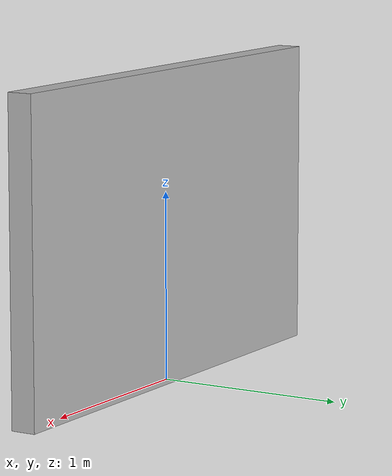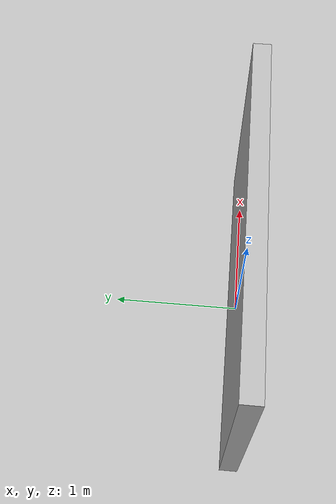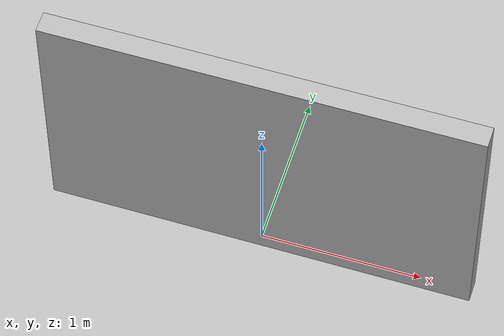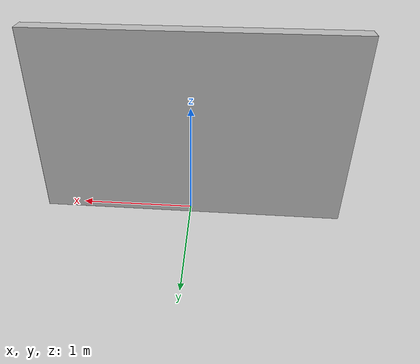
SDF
<?xml version="1.0" ?>
<sdf version="1.5">
  <model name="smaze_wall">
    <static>true</static>
    <link name="link">
				<pose>0.0 0.0 0.8250000000000001 0.0 0.0 0.0</pose>
      <collision name="collision">
        <geometry>
          <box>
				<size>2.64 0.132 1.6500000000000001</size>
          </box>
        </geometry>
      </collision>
      <visual name="visual">
        <geometry>
          <box>
				<size>2.64 0.132 1.6500000000000001</size>
          </box>
        </geometry>
        <material>
          <script>
            <uri>model://smaze_wall/materials/scripts</uri>
            <uri>model://smaze_wall/materials/textures</uri>
            <name>vrc/smaze_wall</name>
          </script>
        </material>
      </visual>
    </link>
  </model>
</sdf>
